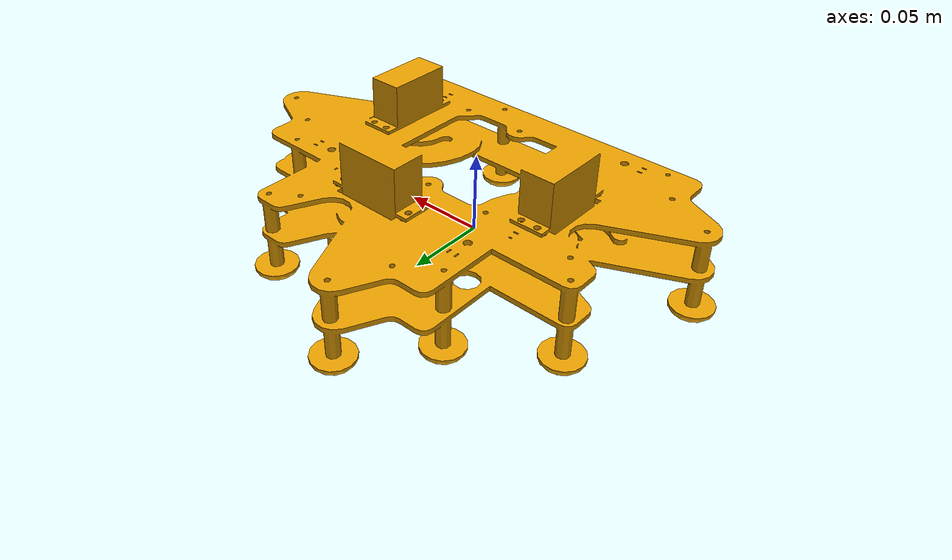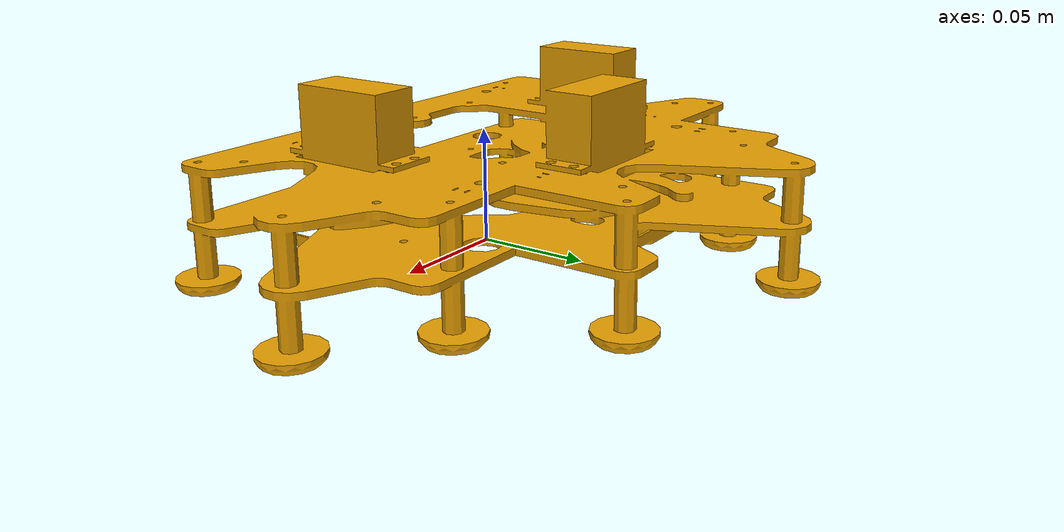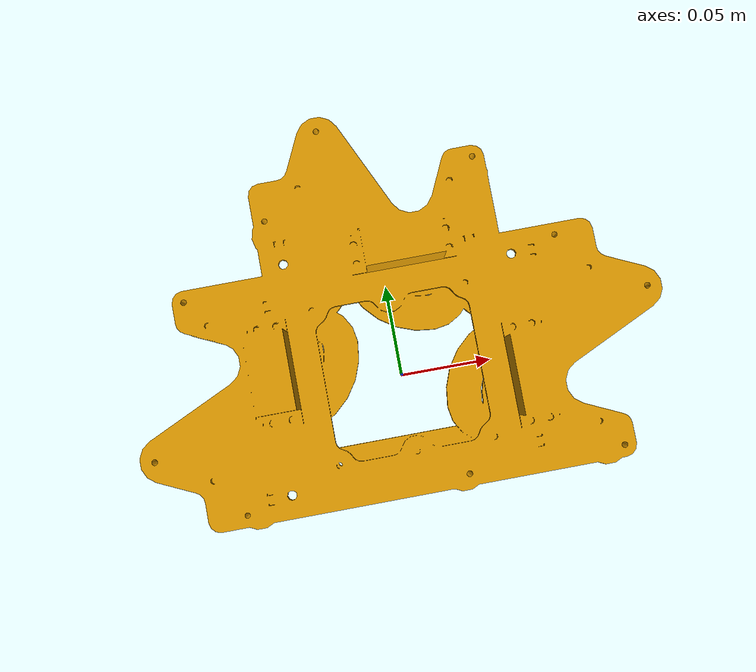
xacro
<?xml version='1.0'?>
<robot name="FreeLunar_Sled_Empty">
  <link name='chassis'>
    <collision name='collision'>
      <origin xyz="0.0 0.0 0.0" rpy="0.0 0.0 0.0" />
      <geometry>
        <mesh filename="package://assembly_control/meshes/module_3_visual.stl" />
      </geometry>
      <surface>
        <bounce>
          <restitution_coefficient>0.35</restitution_coefficient>
          <threshold>0.025</threshold>
        </bounce>
      </surface>
    </collision>

    <visual name='visual'>
      <origin xyz="0.0 0.0 0.0" rpy="0.0 0.0 0.0" />
      <geometry>
        <mesh filename="package://assembly_control/meshes/module_3_visual.stl" />
      </geometry>
    </visual>

    <inertial>
      <mass value="4.419" />
      <origin xyz="0.0 0.063738 0.054633" rpy="-0.1418952682 0.0 0.0" />
      <inertia
	  ixx="0.223047752" ixy="0.0" ixz="0.0"
	  iyy="0.08231827" iyz="0.0"
	  izz="0.274096609" />
    </inertial>
  </link>

  <link name="connector_0" />
  <link name="connector_1" />
  <link name="connector_2" />

  <joint type="fixed" name="connector_0_joint">
    <origin xyz="0.110 0.0 0.0" rpy="0.0 0.0 0.0" />
    <child link="connector_0" />
    <parent link="chassis" />
  </joint>

  <joint type="fixed" name="connector_1_joint">
    <origin xyz="0.0 0.110 0.0" rpy="0.0 0.0 1.5707" />
    <child link="connector_1" />
    <parent link="chassis" />
  </joint>

  <joint type="fixed" name="connector_2_joint">
    <origin xyz="-0.110 0.0 0.0" rpy="0.0 0.0 3.1416" />
    <child link="connector_2" />
    <parent link="chassis" />
  </joint>

</robot>
